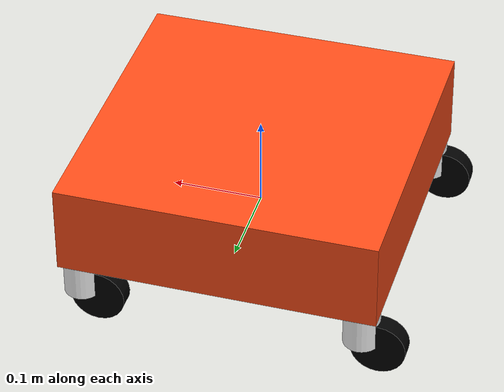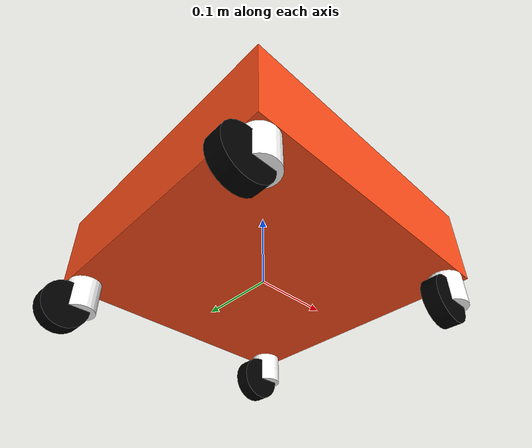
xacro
<?xml version="1.0"?>
<robot xmlns:xacro="http://www.ros.org/wiki/xacro">

	<xacro:include filename="xacro_macro.xacro" />

	<!-- # set parameters -->
	<xacro:property name="chassis_length" value="0.35" />
	<xacro:property name="chassis_width" value="0.35" />
	<xacro:property name="chassis_height" value="0.10" />
	<xacro:property name="chassis_mass" value="10" />

	<xacro:property name="caster_hub_mass" value="0.2" />
	<xacro:property name="caster_hub_radius" value="0.02" />
	<xacro:property name="caster_hub_length" value="0.04" />
	<xacro:property name="wheel_radius" value="0.03" />
	<xacro:property name="wheel_length" value="0.02" />
	<xacro:property name="wheel_mass" value="0.1" />

	<!-- # base_link -->
	<link name="base_link" />

	<!-- # base_footprint link -->
	<joint name="base_footprint_joint" type="fixed">
		<parent link="base_link" />
		<child link="base_footprint" />
		<origin xyz="0 0 0" rpy="0 0 0" />
	</joint>

	<link name="base_footprint" />

	<!-- # chassis link -->
	<joint name="chassis_joint" type="fixed">
		<parent link="base_link" />
		<child link="chassis" />
		<origin xyz="0 0 0" />
	</joint>

	<xacro:link_generator name="chassis" color_name="orange"
		origin_x="0"
		origin_y="0"
		origin_z="${chassis_height/2}"
		mass="${chassis_mass}">

		<box size="${chassis_length} ${chassis_width} ${chassis_height}" />

		<xacro:inertial_box
			mass="${chassis_mass}"
			x="${chassis_length}"
			y="${chassis_width}"
			z="${chassis_height}" />
	</xacro:link_generator>

	<gazebo reference="chassis">
		<material>Gazebo/Orange</material>
	</gazebo>

	<!-- front_left_steer_hub link -->
	<joint name="front_left_steer_hub_joint" type="continuous">
		<parent link="base_link" />
		<child link="front_left_steer_hub_link" />
		<origin
			xyz="${chassis_length/2-caster_hub_radius} ${chassis_width/2-caster_hub_radius} 0" />
		<axis xyz="0 0 1" />
	</joint>

	<xacro:link_generator name="front_left_steer_hub_link" color_name="white"
		origin_x="0"
		origin_y="0"
		origin_z="${-caster_hub_length/2}"
		mass="${caster_hub_mass}">

		<cylinder radius="${caster_hub_radius}" length="${caster_hub_length}" />

		<xacro:inertial_cylinder
			mass="${caster_hub_mass}"
			length="${caster_hub_length}"
			radius="${caster_hub_radius}" />
	</xacro:link_generator>

	<gazebo reference="chassis">
		<material>Gazebo/White</material>
	</gazebo>

	<!-- front_left_wheel link -->
	<joint name="front_left_drive_wheel_joint" type="continuous">
		<parent link="front_left_steer_hub_link" />
		<child link="front_left_drive_wheel_link" />
		<origin xyz="${-caster_hub_radius} 0 ${-caster_hub_length}"
			rpy="${pi/2} 0 0" />
		<axis xyz="0 0 1" />
	</joint>

	<xacro:link_generator name="front_left_drive_wheel_link" color_name="black"
		origin_x="0"
		origin_y="0"
		origin_z="0"
		mass="${wheel_mass}">

		<cylinder radius="${wheel_radius}" length="${wheel_length}" />

		<xacro:inertial_cylinder
			mass="${wheel_mass}"
			length="${wheel_length}"
			radius="${wheel_radius}" />
	</xacro:link_generator>

	<gazebo reference="chassis">
		<material>Gazebo/Black</material>
	</gazebo>

	<!-- front_right_steer_hub link -->
	<joint name="front_right_steer_hub_joint" type="continuous">
		<parent link="base_link" />
		<child link="front_right_steer_hub_link" />
		<origin
			xyz="${chassis_length/2-caster_hub_radius} ${-chassis_width/2+caster_hub_radius} 0" />
		<axis xyz="0 0 1" />
	</joint>

	<xacro:link_generator name="front_right_steer_hub_link" color_name="white"
		origin_x="0"
		origin_y="0"
		origin_z="${-caster_hub_length/2}"
		mass="${caster_hub_mass}">

		<cylinder radius="${caster_hub_radius}" length="${caster_hub_length}" />

		<xacro:inertial_cylinder
			mass="${caster_hub_mass}"
			length="${caster_hub_length}"
			radius="${caster_hub_radius}" />
	</xacro:link_generator>

	<gazebo reference="chassis">
		<material>Gazebo/White</material>
	</gazebo>

	<!-- front_right_wheel link -->
	<joint name="front_right_drive_wheel_joint" type="continuous">
		<parent link="front_right_steer_hub_link" />
		<child link="front_right_drive_wheel_link" />
		<origin xyz="${-caster_hub_radius} 0 ${-caster_hub_length}"
			rpy="${pi/2} 0 0" />
		<axis xyz="0 0 1" />
	</joint>

	<xacro:link_generator name="front_right_drive_wheel_link" color_name="black"
		origin_x="0"
		origin_y="0"
		origin_z="0"
		mass="${wheel_mass}">

		<cylinder radius="${wheel_radius}" length="${wheel_length}" />

		<xacro:inertial_cylinder
			mass="${wheel_mass}"
			length="${wheel_length}"
			radius="${wheel_radius}" />
	</xacro:link_generator>

	<gazebo reference="chassis">
		<material>Gazebo/Black</material>
	</gazebo>

	<!-- back_right_steer_hub link -->
	<joint name="back_right_steer_hub_joint" type="continuous">
		<parent link="base_link" />
		<child link="back_right_steer_hub_link" />
		<origin
			xyz="${-chassis_length/2+caster_hub_radius} ${-chassis_width/2+caster_hub_radius} 0" />
		<axis xyz="0 0 1" />
	</joint>

	<xacro:link_generator name="back_right_steer_hub_link" color_name="white"
		origin_x="0"
		origin_y="0"
		origin_z="${-caster_hub_length/2}"
		mass="${caster_hub_mass}">

		<cylinder radius="${caster_hub_radius}" length="${caster_hub_length}" />

		<xacro:inertial_cylinder
			mass="${caster_hub_mass}"
			length="${caster_hub_length}"
			radius="${caster_hub_radius}" />
	</xacro:link_generator>

	<gazebo reference="chassis">
		<material>Gazebo/White</material>
	</gazebo>

	<!-- back_right_wheel link -->
	<joint name="back_right_drive_wheel_joint" type="continuous">
		<parent link="back_right_steer_hub_link" />
		<child link="back_right_drive_wheel_link" />
		<origin xyz="${-caster_hub_radius} 0 ${-caster_hub_length}"
			rpy="${pi/2} 0 0" />
		<axis xyz="0 0 1" />
	</joint>

	<xacro:link_generator name="back_right_drive_wheel_link" color_name="black"
		origin_x="0"
		origin_y="0"
		origin_z="0"
		mass="${wheel_mass}">

		<cylinder radius="${wheel_radius}" length="${wheel_length}" />

		<xacro:inertial_cylinder
			mass="${wheel_mass}"
			length="${wheel_length}"
			radius="${wheel_radius}" />
	</xacro:link_generator>

	<gazebo reference="chassis">
		<material>Gazebo/Black</material>
	</gazebo>

	<!-- back_left_steer_hub link -->
	<joint name="back_left_steer_hub_joint" type="continuous">
		<parent link="base_link" />
		<child link="back_left_steer_hub_link" />
		<origin
			xyz="${-chassis_length/2+caster_hub_radius} ${chassis_width/2-caster_hub_radius} 0" />
		<axis xyz="0 0 1" />
	</joint>

	<xacro:link_generator name="back_left_steer_hub_link" color_name="white"
		origin_x="0"
		origin_y="0"
		origin_z="${-caster_hub_length/2}"
		mass="${caster_hub_mass}">

		<cylinder radius="${caster_hub_radius}" length="${caster_hub_length}" />

		<xacro:inertial_cylinder
			mass="${caster_hub_mass}"
			length="${caster_hub_length}"
			radius="${caster_hub_radius}" />
	</xacro:link_generator>

	<gazebo reference="chassis">
		<material>Gazebo/White</material>
	</gazebo>

	<!-- back_left_wheel link -->
	<joint name="back_left_drive_wheel_joint" type="continuous">
		<parent link="back_left_steer_hub_link" />
		<child link="back_left_drive_wheel_link" />
		<origin xyz="${-caster_hub_radius} 0 ${-caster_hub_length}"
			rpy="${pi/2} 0 0" />
		<axis xyz="0 0 1" />
	</joint>

	<xacro:link_generator name="back_left_drive_wheel_link" color_name="black"
		origin_x="0"
		origin_y="0"
		origin_z="0"
		mass="${wheel_mass}">

		<cylinder radius="${wheel_radius}" length="${wheel_length}" />

		<xacro:inertial_cylinder
			mass="${wheel_mass}"
			length="${wheel_length}"
			radius="${wheel_radius}" />
	</xacro:link_generator>

	<gazebo reference="chassis">
		<material>Gazebo/Black</material>
	</gazebo>
</robot>

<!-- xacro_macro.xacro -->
<robot xmlns:xacro="http://www.ros.org/wiki/xacro" >

	<!-- material colors -->
	<material name="white">
		<color rgba="1 1 1 1" />
	</material>

	<material name="orange">
		<color rgba="1 0.3 0.1 1" />
	</material>

	<material name="blue">
		<color rgba="0.2 0.2 1 1" />
	</material>

	<material name="black">
		<color rgba="0 0 0 1" />
	</material>

	<material name="red">
		<color rgba="1 0 0 1" />
	</material>

	<!-- inertial macros -->
	<xacro:macro name="inertial_sphere" params="mass radius">
		<inertia ixx="${(2/5) * mass * (radius*radius)}" ixy="0.0" ixz="0.0"
			iyy="${(2/5) * mass * (radius*radius)}" iyz="0.0"
			izz="${(2/5) * mass * (radius*radius)}" />
	</xacro:macro>

	<xacro:macro name="inertial_box" params="mass x y z">
		<inertia ixx="${(1/12) * mass * (y*y+z*z)}" ixy="0.0" ixz="0.0"
			iyy="${(1/12) * mass * (x*x+z*z)}" iyz="0.0"
			izz="${(1/12) * mass * (x*x+y*y)}" />
	</xacro:macro>

	<xacro:macro name="inertial_cylinder" params="mass length radius">
		<inertia ixx="${(1/12) * mass * (3*radius*radius + length*length)}" ixy="0.0"
			ixz="0.0"
			iyy="${(1/12) * mass * (3*radius*radius + length*length)}" iyz="0.0"
			izz="${(1/2) * mass * (radius*radius)}" />
	</xacro:macro>

	<!-- link & joint generation macros -->
	<xacro:macro name="link_generator"
		params="name color_name origin_x origin_y origin_z roll:=0 pitch:=0 yaw:=0 mass *shape *inertia">
		<link name="${name}">
			<visual>
				<origin xyz="${origin_x} ${origin_y} ${origin_z}" rpy="${roll} ${pitch} ${yaw}" />
				<geometry>
					<xacro:insert_block name="shape" />
				</geometry>
				<material name="${color_name}" />
			</visual>
			<collision>
				<origin xyz="${origin_x} ${origin_y} ${origin_z}" rpy="${roll} ${pitch} ${yaw}" />
				<geometry>
					<xacro:insert_block name="shape" />
				</geometry>
			</collision>
			<inertial>
				<origin xyz="${origin_x} ${origin_y} ${origin_z}" rpy="${roll} ${pitch} ${yaw}" />
				<mass value="${mass}" />
				<xacro:insert_block name="inertia" />
			</inertial>
		</link>
	</xacro:macro>

</robot>
